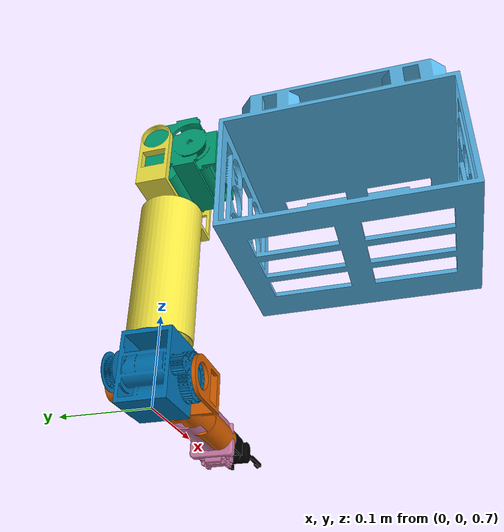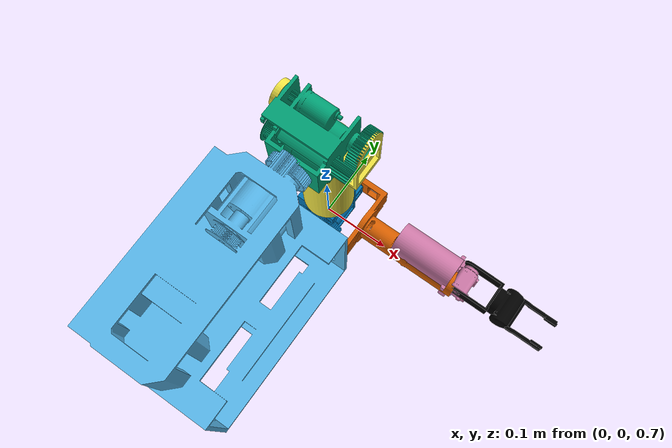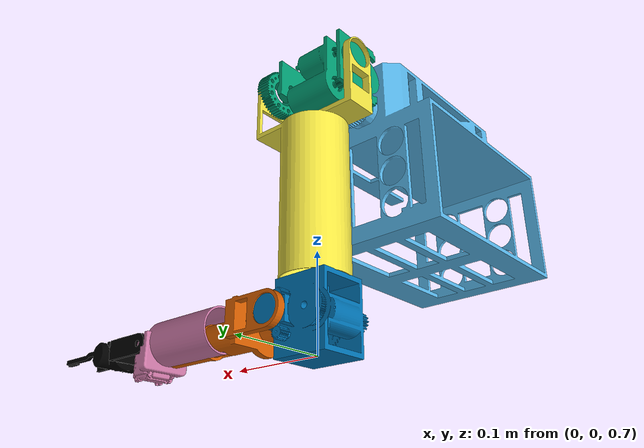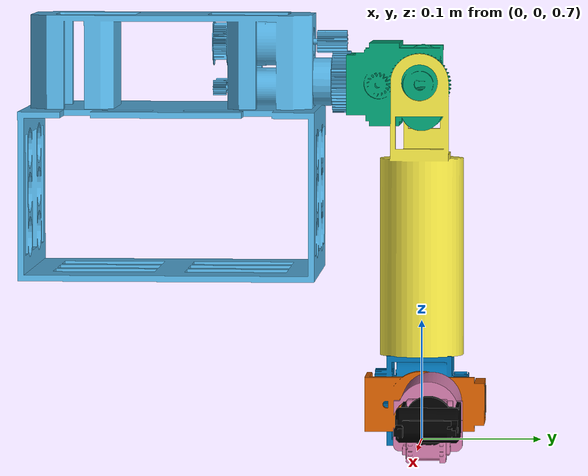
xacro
<?xml version="1.0" ?>

<robot name="arm" xmlns:xacro="http://www.ros.org/wiki/xacro">

<!-- 색깔지정 -->
    <material name="black">
        <color rgba="0.0 0.0 0.0 1.0"/>
    </material>
    <material name="orange">
        <color rgba="1.0 0.423529411765 0.0392156862745 1.0"/>
    </material>

<!-- link 시작 -->
<!-- 어깨 -->
    <link name="base"/>

    <joint name="fixed" type="fixed">
        <parent link="base"/>
        <child link="link1"/>
    </joint>

    <link name="link1">
        <collision>
            <origin rpy="0 0 0" xyz="0.005 -0.195 0.948"/>
            <geometry>
                <box size="0.18 0.25 0.23"/>
            </geometry>
        </collision>
        <visual>
            <origin rpy="0 0 0" xyz="0.005 -0.195 0.948"/>
            <geometry>
            <mesh filename="package://arm_description/meshes/s11.stl" scale="0.001 0.001 0.001"/>
            </geometry>
        </visual>
        <inertial>
            <mass value="1"/>
            <inertia ixx="1.0" ixy="0.0" ixz="0.0" iyy="1.0" iyz="0.0" izz="1.0"/>
        </inertial>
    </link>

    <joint name="joint1" type="revolute">
        <parent link="link1"/>
        <child link="link2"/>
        <origin rpy="0 0 0" xyz="0 0 1"/>
        <axis xyz="0 1 0"/>
        <limit effort="30" lower="-3.14" upper="3.14" velocity="1.571"/>
    </joint>

    <link name="link2">
        <collision>
            <origin rpy="0 0 0" xyz="0 0 0"/>
            <geometry>
            <box size="0.08 0.12 0.10"/>
            <mesh filename="package://arm_description/meshes/s2.stl" scale="0.001 0.001 0.001"/>
            </geometry>
        </collision>
        <visual>
            <origin rpy="0 0 0" xyz="0 0 0"/>
            <geometry>
            <mesh filename="package://arm_description/meshes/s2.stl" scale="0.001 0.001 0.001"/>
            </geometry>

        </visual>
        <inertial>
            <mass value="1"/>
            <inertia ixx="1.0" ixy="0.0" ixz="0.0" iyy="1.0" iyz="0.0" izz="1.0"/>
        </inertial>
    </link>

    <joint name="joint2" type="revolute">
        <parent link="link2"/>
        <child link="link3"/>
        <origin rpy="0 0 0" xyz="0 0 0"/>
        <axis xyz="1 0 0"/>
        <limit effort="30" lower="-0.5" upper="3.14" velocity="1.571"/>
    </joint>

    <link name="link3">
        <collision>
            <origin rpy="0 0 0" xyz="0 0 0"/>
            <geometry>
                <mesh filename="package://arm_description/meshes/s3.stl" scale="0.001 0.001 0.001"/>
                <box size="0.07 0.12 0.24"/>
            </geometry>
        </collision>
        <visual>
            <origin rpy="0 0 0" xyz="0 0 0"/>
            <geometry>
            <mesh filename="package://arm_description/meshes/s3.stl" scale="0.001 0.001 0.001"/>
            </geometry>
        </visual>
        <inertial>
            <origin rpy="0 0 0" xyz="0 0 0"/>
            <mass value="1"/>
            <inertia ixx="1.0" ixy="0.0" ixz="0.0" iyy="1.0" iyz="0.0" izz="1.0"/>
        </inertial>
    </link>

    <joint name="joint3" type="revolute">
        <parent link="link3"/>
        <child link="link4"/>
        <origin rpy="0 0 0" xyz="0 0 0"/>
        <axis xyz="0 0 1"/>
        <limit effort="30" lower="-3.14" upper="3.14" velocity="1.571"/>
    </joint>

    <link name="link4">
        <collision>
            <origin rpy="0 0 0" xyz="0 0 -0.252"/>
            <geometry>
                <mesh filename="package://arm_description/meshes/s4.stl" scale="0.001 0.001 0.001"/>
                <box size="0.085 0.065 0.08"/>
            </geometry>
        </collision>
        <visual>
            <origin rpy="0 0 0" xyz="0 0 -0.252"/>
            <geometry>
                <mesh filename="package://arm_description/meshes/s4.stl" scale="0.001 0.001 0.001"/>
            </geometry>
        </visual>
        <inertial>
            <origin rpy="0 0 0" xyz="0 0 -0.252"/>
            <mass value="1"/>
            <inertia ixx="1.0" ixy="0.0" ixz="0.0" iyy="1.0" iyz="0.0" izz="1.0"/>
        </inertial>
    </link>
<!-- 팔꿈치 -->
    <joint name="joint4" type="revolute">
        <parent link="link4"/>
        <child link="link5"/>
        <origin rpy="0 0 0" xyz="0.015 0 -0.265"/>
        <axis xyz="0 1 0"/>
        <limit effort="30" lower="-0.35" upper="2.0" velocity="1.571"/>
    </joint>

    <link name="link5">
        <collision>
            <origin rpy="0 0 0" xyz="0 0 0"/>
            <geometry>
                <mesh filename="package://arm_description/meshes/s5_1.stl" scale="0.001 0.001 0.001"/>
                <box size="0.11 0.04 0.19"/>
            </geometry>
        </collision>
        <visual>
            <origin rpy="0 0 0" xyz="0 0 0"/>
            <geometry>
                <mesh filename="package://arm_description/meshes/s5_1.stl" scale="0.001 0.001 0.001"/>
            </geometry>
        </visual>
        <inertial>
            <origin rpy="0 0 0" xyz="0 0 0"/>
            <mass value="1"/>
            <inertia ixx="1.0" ixy="0.0" ixz="0.0" iyy="1.0" iyz="0.0" izz="1.0"/>
        </inertial>
    </link>

<!-- 손목  수정필요-->

<joint name="joint5" type="revolute">
        <parent link="link5"/>
        <child link="link6"/>
        <origin rpy="0 0 0" xyz="0 0 0"/>
        <axis xyz="1 0 0"/>
        <limit effort="30" lower="-3.14" upper="3.14" velocity="1.571"/>
    </joint>

    <link name="link6">
        <collision>
            <origin rpy="0 0 0" xyz="0.15 0.007 0.0"/>
            <geometry>
                <mesh filename="package://arm_description/meshes/s6_1.stl" scale="0.001 0.001 0.001"/>
                <box size="0.05 0.05 0.13"/>
            </geometry>
        </collision>
        <visual>
            <origin rpy="0 0 0" xyz="0.15 0.007 0.0"/>
            <geometry>
                <mesh filename="package://arm_description/meshes/s6_1.stl" scale="0.001 0.001 0.001"/>
            </geometry>
        </visual>
        <inertial>
            <origin rpy="0 0 0" xyz="-0.005 0.007 -0.17"/>
            <mass value="1"/>
            <inertia ixx="1.0" ixy="0.0" ixz="0.0" iyy="1.0" iyz="0.0" izz="1.0"/>
        </inertial>
    </link>

    <joint name="joint6" type="revolute">
        <parent link="link6"/>
        <child link="link7"/>
        <origin rpy="0 0 0" xyz="0.205 0.015 0.005"/>
        <axis xyz="0 1 0"/>
        <limit effort="30" lower="-1.8" upper="1.8" velocity="1.571"/>
    </joint>

    <link name="link7">
        <collision>
            <origin rpy="0 0 0" xyz="0 0 0"/>
            <geometry>
                <mesh filename="package://arm_description/meshes/s7_1.stl" scale="0.001 0.001 0.001"/>
                <box size="0.07 0.02 0.1"/>
            </geometry>
        </collision>
        <visual>
            <origin rpy="0 0 0" xyz="0 0 0"/>
            <geometry>
                <mesh filename="package://arm_description/meshes/s7_1.stl" scale="0.001 0.001 0.001"/>
            </geometry>
            <material name="black"/>
        </visual>
        <inertial>
            <origin rpy="0 0 0" xyz="0 0 0"/>
            <mass value="1"/>
            <inertia ixx="1.0" ixy="0.0" ixz="0.0" iyy="1.0" iyz="0.0" izz="1.0"/>
        </inertial>
    </link>

</robot>
